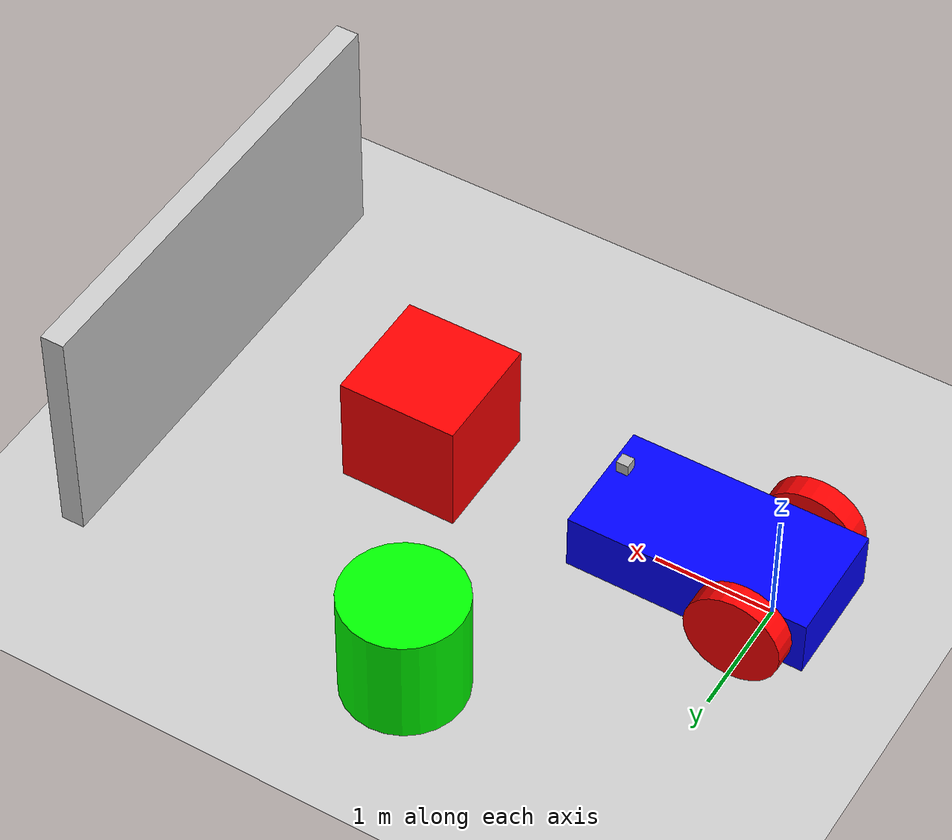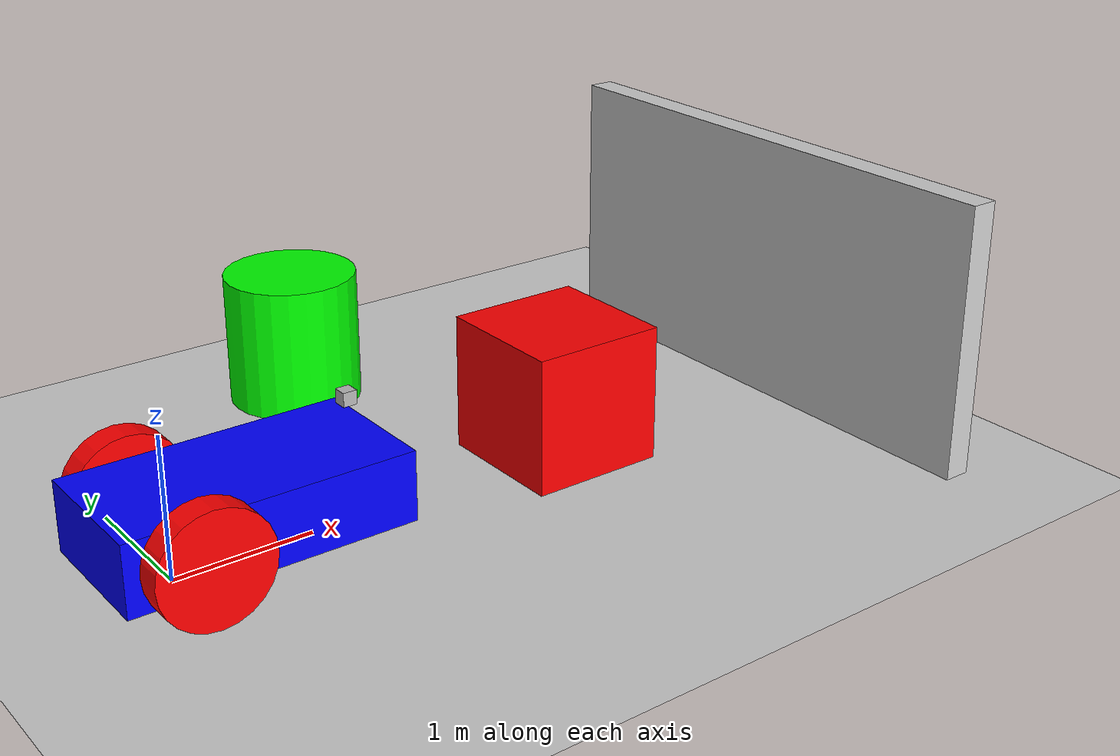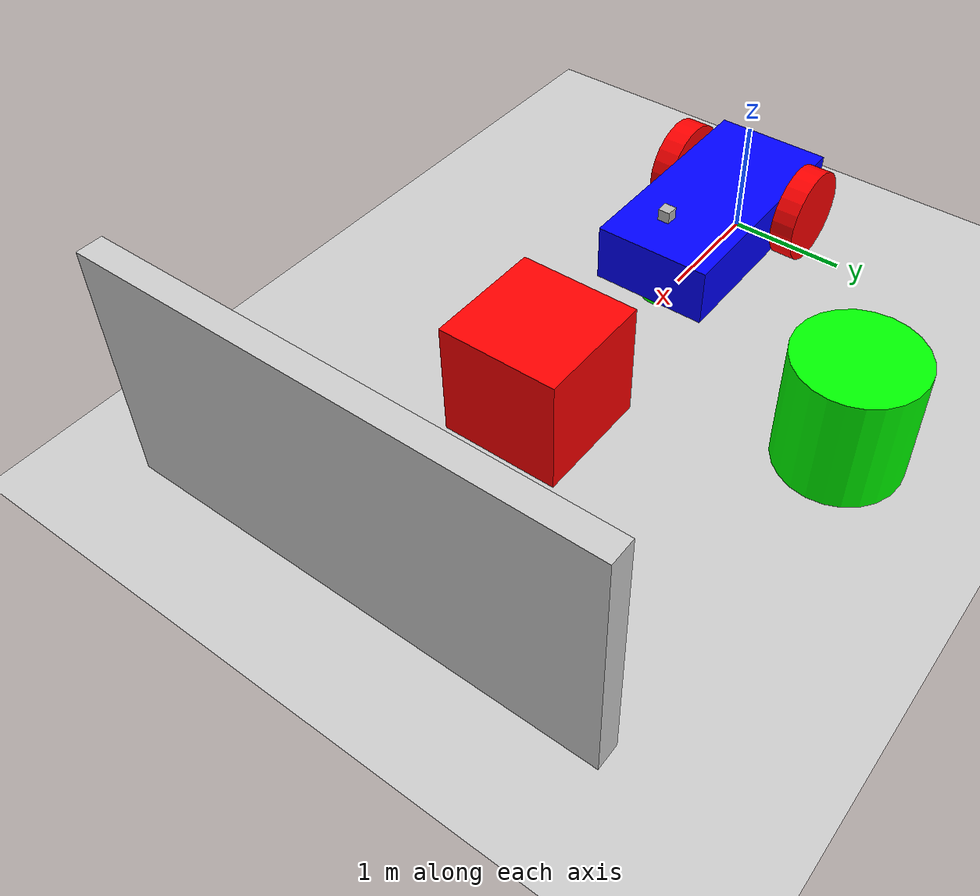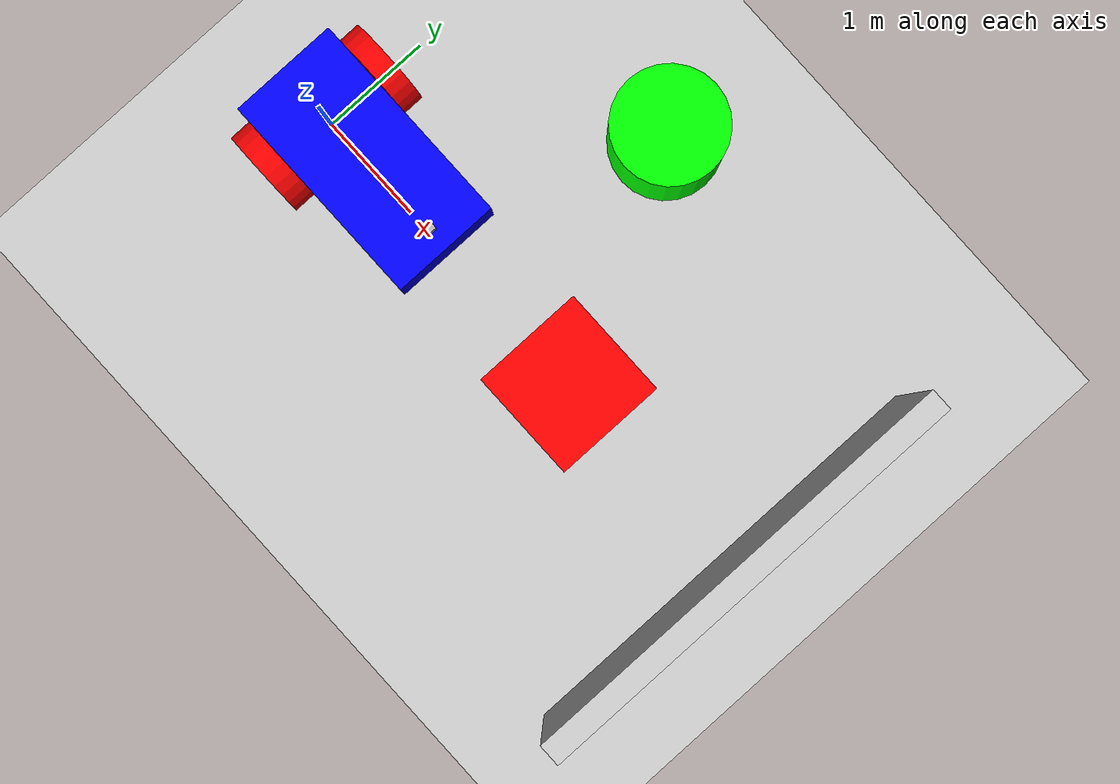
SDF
<?xml version="1.0" ?>
<sdf version="1.8">
    <world name="car_world">
        <physics name="1ms" type="ignored">
            <max_step_size>0.001</max_step_size>
            <real_time_factor>1.0</real_time_factor>
        </physics>
        <plugin
            filename="gz-sim-physics-system"
            name="gz::sim::systems::Physics">
        </plugin>
        <plugin
            filename="gz-sim-user-commands-system"
            name="gz::sim::systems::UserCommands">
        </plugin>
        <plugin
            filename="gz-sim-scene-broadcaster-system"
            name="gz::sim::systems::SceneBroadcaster">
        </plugin>
        <plugin
            filename="gz-sim-sensors-system"
            name="gz::sim::systems::Sensors">
            <render_engine>ogre2</render_engine>
        </plugin>

        <light type="directional" name="sun">
            <cast_shadows>true</cast_shadows>
            <pose>0 0 10 0 0 0</pose>
            <diffuse>0.8 0.8 0.8 1</diffuse>
            <specular>0.2 0.2 0.2 1</specular>
            <attenuation>
                <range>1000</range>
                <constant>0.9</constant>
                <linear>0.01</linear>
                <quadratic>0.001</quadratic>
            </attenuation>
            <direction>-0.5 0.1 -0.9</direction>
        </light>

        <model name="ground_plane">
            <static>true</static>
            <link name="link">
                <collision name="collision">
                    <geometry>
                        <plane>
                            <normal>0 0 1</normal>
                        </plane>
                    </geometry>
                </collision>
                <visual name="visual">
                    <geometry>
                        <plane>
                            <normal>0 0 1</normal>
                            <size>100 100</size>
                        </plane>
                    </geometry>
                    <material>
                        <ambient>0.8 0.8 0.8 1</ambient>
                        <diffuse>0.8 0.8 0.8 1</diffuse>
                        <specular>0.8 0.8 0.8 1</specular>
                    </material>
                </visual>
            </link>
        </model>

        <model name='vehicle_blue' canonical_link='chassis'>
            <pose relative_to='world'>0 0 0 0 0 0</pose>

            <link name='chassis'>
                <pose relative_to='__model__'>0.5 0 0.4 0 0 0</pose>
                <inertial>
                    <mass>1.14395</mass>
                    <inertia>
                        <ixx>0.095329</ixx>
                        <ixy>0</ixy>
                        <ixz>0</ixz>
                        <iyy>0.381317</iyy>
                        <iyz>0</iyz>
                        <izz>0.476646</izz>
                    </inertia>
                </inertial>
                <visual name='visual'>
                    <geometry>
                        <box>
                            <size>2.0 1.0 0.5</size>
                        </box>
                    </geometry>
                    <material>
                        <ambient>0.0 0.0 1.0 1</ambient>
                        <diffuse>0.0 0.0 1.0 1</diffuse>
                        <specular>0.0 0.0 1.0 1</specular>
                    </material>
                </visual>
                <collision name='collision'>
                    <geometry>
                        <box>
                            <size>2.0 1.0 0.5</size>
                        </box>
                    </geometry>
                </collision>
            </link>

            <link name='left_wheel'>
                <pose relative_to="chassis">-0.5 0.6 0 -1.5707 0 0</pose>
                <inertial>
                    <mass>1</mass>
                    <inertia>
                        <ixx>0.043333</ixx>
                        <ixy>0</ixy>
                        <ixz>0</ixz>
                        <iyy>0.043333</iyy>
                        <iyz>0</iyz>
                        <izz>0.08</izz>
                    </inertia>
                </inertial>
                <visual name='visual'>
                    <geometry>
                        <cylinder>
                            <radius>0.4</radius>
                            <length>0.2</length>
                        </cylinder>
                    </geometry>
                    <material>
                        <ambient>1.0 0.0 0.0 1</ambient>
                        <diffuse>1.0 0.0 0.0 1</diffuse>
                        <specular>1.0 0.0 0.0 1</specular>
                    </material>
                </visual>
                <collision name='collision'>
                    <geometry>
                        <cylinder>
                            <radius>0.4</radius>
                            <length>0.2</length>
                        </cylinder>
                    </geometry>
                </collision>
            </link>

            <link name='right_wheel'>
                <pose relative_to="chassis">-0.5 -0.6 0 -1.5707 0 0</pose>
                <inertial>
                    <mass>1</mass>
                    <inertia>
                        <ixx>0.043333</ixx>
                        <ixy>0</ixy>
                        <ixz>0</ixz>
                        <iyy>0.043333</iyy>
                        <iyz>0</iyz>
                        <izz>0.08</izz>
                    </inertia>
                </inertial>
                <visual name='visual'>
                    <geometry>
                        <cylinder>
                            <radius>0.4</radius>
                            <length>0.2</length>
                        </cylinder>
                    </geometry>
                    <material>
                        <ambient>1.0 0.0 0.0 1</ambient>
                        <diffuse>1.0 0.0 0.0 1</diffuse>
                        <specular>1.0 0.0 0.0 1</specular>
                    </material>
                </visual>
                <collision name='collision'>
                    <geometry>
                        <cylinder>
                            <radius>0.4</radius>
                            <length>0.2</length>
                        </cylinder>
                    </geometry>
                </collision>
            </link>

            <link name='caster'>
                <pose relative_to='chassis'>0.8 0 -0.2 0 0 0</pose>
                <inertial>
                    <mass>1</mass>
                    <inertia>
                        <ixx>0.016</ixx>
                        <ixy>0</ixy>
                        <ixz>0</ixz>
                        <iyy>0.016</iyy>
                        <iyz>0</iyz>
                        <izz>0.016</izz>
                    </inertia>
                </inertial>
                <visual name='visual'>
                    <geometry>
                        <sphere>
                            <radius>0.2</radius>
                        </sphere>
                    </geometry>
                    <material>
                        <ambient>0.0 1.0 0.0 1</ambient>
                        <diffuse>0.0 1.0 0.0 1</diffuse>
                        <specular>0.0 1.0 0.0 1</specular>
                    </material>
                </visual>
                <collision name='collision'>
                    <geometry>
                        <sphere>
                            <radius>0.2</radius>
                        </sphere>
                    </geometry>
                </collision>
            </link>

            <joint name='left_wheel_joint' type='revolute'>
                <pose relative_to='left_wheel'/>
                <parent>chassis</parent>
                <child>left_wheel</child>
                <axis>
                    <xyz expressed_in='__model__'>0 1 0</xyz>
                    <limit>
                        <lower>-1.79769e+308</lower>
                        <upper>1.79769e+308</upper>
                    </limit>
                </axis>
            </joint>

            <joint name='right_wheel_joint' type='revolute'>
                <pose relative_to='right_wheel'/>
                <parent>chassis</parent>
                <child>right_wheel</child>
                <axis>
                    <xyz expressed_in='__model__'>0 1 0</xyz>
                    <limit>
                        <lower>-1.79769e+308</lower>
                        <upper>1.79769e+308</upper>
                    </limit>
                </axis>
            </joint>

            <joint name='caster_wheel' type='ball'>
                <parent>chassis</parent>
                <child>caster</child>
            </joint>

            <link name='lidar_link'>
                <pose relative_to='chassis'>0.8 0 0.5 0 0 0</pose>
                <inertial>
                    <mass>0.1</mass>
                    <inertia>
                        <ixx>0.000166667</ixx>
                        <iyy>0.000166667</iyy>
                        <izz>0.000166667</izz>
                    </inertia>
                </inertial>
                <collision name='collision'>
                    <geometry>
                        <box>
                            <size>0.1 0.1 0.1</size>
                        </box>
                    </geometry>
                </collision>
                <visual name='visual'>
                    <geometry>
                        <box>
                            <size>0.1 0.1 0.1</size>
                        </box>
                    </geometry>
                </visual>
                <sensor name='gpu_lidar' type='gpu_lidar'>
                    <topic>lidar</topic>
                    <update_rate>10</update_rate>
                    <lidar>
                        <scan>
                            <horizontal>
                                <samples>640</samples>
                                <resolution>1</resolution>
                                <min_angle>-1.396263</min_angle>
                                <max_angle>1.396263</max_angle>
                            </horizontal>
                            <vertical>
                                <samples>1</samples>
                                <resolution>0.01</resolution>
                                <min_angle>0</min_angle>
                                <max_angle>0</max_angle>
                            </vertical>
                        </scan>
                        <range>
                            <min>0.08</min>
                            <max>10.0</max>
                            <resolution>0.01</resolution>
                        </range>
                    </lidar>
                    <visualize>true</visualize>
                </sensor>
            </link>

            <joint name='lidar_joint' type='fixed'>
                <parent>chassis</parent>
                <child>lidar_link</child>
            </joint>

            <plugin
                filename="gz-sim-diff-drive-system"
                name="gz::sim::systems::DiffDrive">
                <left_joint>left_wheel_joint</left_joint>
                <right_joint>right_wheel_joint</right_joint>
                <wheel_separation>1.2</wheel_separation>
                <wheel_radius>0.4</wheel_radius>
                <odom_publish_frequency>1</odom_publish_frequency>
                <topic>cmd_vel</topic>
            </plugin>
        </model>

        <!-- Test obstacles for LiDAR -->
        <model name='box_obstacle_1'>
            <pose>3 0 0.5 0 0 0</pose>
            <static>true</static>
            <link name='link'>
                <collision name='collision'>
                    <geometry>
                        <box>
                            <size>1 1 1</size>
                        </box>
                    </geometry>
                </collision>
                <visual name='visual'>
                    <geometry>
                        <box>
                            <size>1 1 1</size>
                        </box>
                    </geometry>
                    <material>
                        <ambient>1 0 0 1</ambient>
                        <diffuse>1 0 0 1</diffuse>
                        <specular>0.1 0.1 0.1 1</specular>
                    </material>
                </visual>
            </link>
        </model>

        <model name='cylinder_obstacle'>
            <pose>2 2 0.5 0 0 0</pose>
            <static>true</static>
            <link name='link'>
                <collision name='collision'>
                    <geometry>
                        <cylinder>
                            <radius>0.5</radius>
                            <length>1</length>
                        </cylinder>
                    </geometry>
                </collision>
                <visual name='visual'>
                    <geometry>
                        <cylinder>
                            <radius>0.5</radius>
                            <length>1</length>
                        </cylinder>
                    </geometry>
                    <material>
                        <ambient>0 1 0 1</ambient>
                        <diffuse>0 1 0 1</diffuse>
                        <specular>0.1 0.1 0.1 1</specular>
                    </material>
                </visual>
            </link>
        </model>

        <model name='wall'>
            <pose>5 0 1 0 0 0</pose>
            <static>true</static>
            <link name='link'>
                <collision name='collision'>
                    <geometry>
                        <box>
                            <size>0.2 4 2</size>
                        </box>
                    </geometry>
                </collision>
                <visual name='visual'>
                    <geometry>
                        <box>
                            <size>0.2 4 2</size>
                        </box>
                    </geometry>
                    <material>
                        <ambient>0.5 0.5 0.5 1</ambient>
                        <diffuse>0.8 0.8 0.8 1</diffuse>
                        <specular>0.1 0.1 0.1 1</specular>
                    </material>
                </visual>
            </link>
        </model>

    </world>
</sdf>
